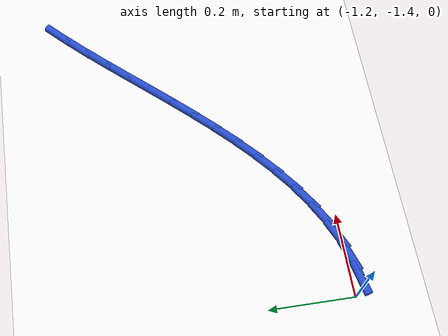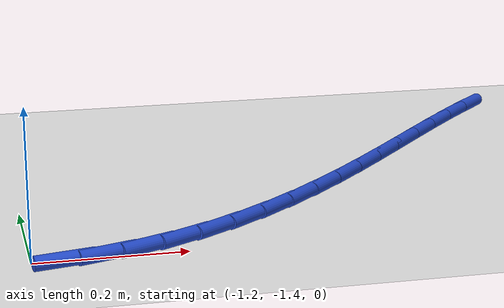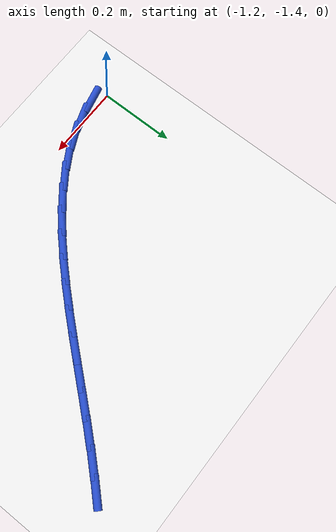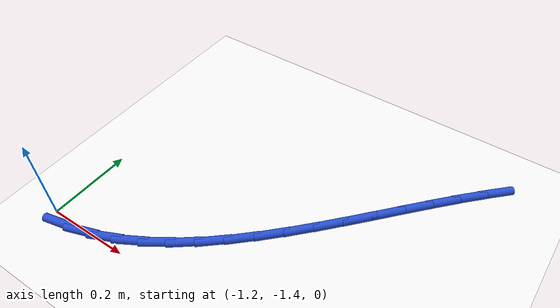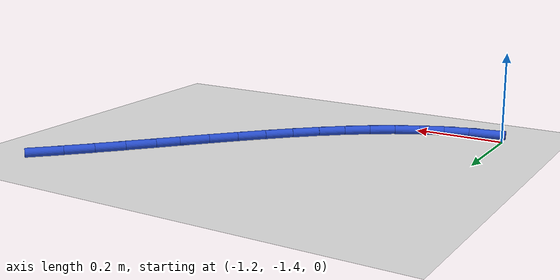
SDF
<sdf version="1.6">
 <world name="default">
  <model name="ground_plane">
   <static>1</static>
   <link name="link">
    <collision name="collision">
     <geometry><plane><normal>0 0 1</normal><size>100 100</size></plane></geometry>
     <surface><friction><ode><mu>100</mu><mu2>50</mu2></ode></friction></surface>
    </collision>
    <visual name="visual">
     <cast_shadows>0</cast_shadows>
     <geometry><plane><normal>0 0 1</normal><size>100 100</size></plane></geometry>
     <material>
      <script><uri>file://media/materials/scripts/gazebo.material</uri><name>Gazebo/WhiteGlow</name></script>
     </material>
    </visual>
   </link>
  </model>
  <model name="line">
   <link name="link_99">
    <pose>-1.1600280065689692 -1.4197722489236113 0.01 0 1.57 0.21276835434842656</pose>
    <collision name="collision">
     <geometry><cylinder><radius>0.01</radius><length>0.08</length></cylinder></geometry>
    </collision>
    <visual name="visual">
     <material>
      <script><name>Gazebo/Blue</name><uri>file://media/materials/scripts/gazebo.material</uri></script>
     </material>
     <geometry><cylinder><radius>0.01</radius><length>0.08</length></cylinder></geometry>
    </visual>
   </link>
   <link name="link_100">
    <pose>-1.1050600243449615 -1.4078970605701893 0.01 0 1.57 0.32487561543664883</pose>
    <collision name="collision">
     <geometry><cylinder><radius>0.01</radius><length>0.08</length></cylinder></geometry>
    </collision>
    <visual name="visual">
     <material>
      <script><name>Gazebo/Blue</name><uri>file://media/materials/scripts/gazebo.material</uri></script>
     </material>
     <geometry><cylinder><radius>0.01</radius><length>0.08</length></cylinder></geometry>
    </visual>
   </link>
   <link name="link_101">
    <pose>-1.0518881598986847 -1.3899882844916367 0.01 0 1.57 0.4291946029937078</pose>
    <collision name="collision">
     <geometry><cylinder><radius>0.01</radius><length>0.08</length></cylinder></geometry>
    </collision>
    <visual name="visual">
     <material>
      <script><name>Gazebo/Blue</name><uri>file://media/materials/scripts/gazebo.material</uri></script>
     </material>
     <geometry><cylinder><radius>0.01</radius><length>0.08</length></cylinder></geometry>
    </visual>
   </link>
   <link name="link_102">
    <pose>-1.0004007100817627 -1.36642522894167 0.01 0 1.57 0.5207507013752534</pose>
    <collision name="collision">
     <geometry><cylinder><radius>0.01</radius><length>0.08</length></cylinder></geometry>
    </collision>
    <visual name="visual">
     <material>
      <script><name>Gazebo/Blue</name><uri>file://media/materials/scripts/gazebo.material</uri></script>
     </material>
     <geometry><cylinder><radius>0.01</radius><length>0.08</length></cylinder></geometry>
    </visual>
   </link>
   <link name="link_103">
    <pose>-0.95043045822631 -1.3377643382263307 0.01 0 1.57 0.5991496635756609</pose>
    <collision name="collision">
     <geometry><cylinder><radius>0.01</radius><length>0.08</length></cylinder></geometry>
    </collision>
    <visual name="visual">
     <material>
      <script><name>Gazebo/Blue</name><uri>file://media/materials/scripts/gazebo.material</uri></script>
     </material>
     <geometry><cylinder><radius>0.01</radius><length>0.08</length></cylinder></geometry>
    </visual>
   </link>
   <link name="link_104">
    <pose>-0.9018101815337081 -1.3045620762139876 0.01 0 1.57 0.6648581560356254</pose>
    <collision name="collision">
     <geometry><cylinder><radius>0.01</radius><length>0.08</length></cylinder></geometry>
    </collision>
    <visual name="visual">
     <material>
      <script><name>Gazebo/Blue</name><uri>file://media/materials/scripts/gazebo.material</uri></script>
     </material>
     <geometry><cylinder><radius>0.01</radius><length>0.08</length></cylinder></geometry>
    </visual>
   </link>
   <link name="link_105">
    <pose>-0.8543726572053384 -1.2673749067730082 0.01 0 1.57 0.7187856805991432</pose>
    <collision name="collision">
     <geometry><cylinder><radius>0.01</radius><length>0.08</length></cylinder></geometry>
    </collision>
    <visual name="visual">
     <material>
      <script><name>Gazebo/Blue</name><uri>file://media/materials/scripts/gazebo.material</uri></script>
     </material>
     <geometry><cylinder><radius>0.01</radius><length>0.08</length></cylinder></geometry>
    </visual>
   </link>
   <link name="link_106">
    <pose>-0.8079506624425828 -1.2267592937717615 0.01 0 1.57 0.7619793005165518</pose>
    <collision name="collision">
     <geometry><cylinder><radius>0.01</radius><length>0.08</length></cylinder></geometry>
    </collision>
    <visual name="visual">
     <material>
      <script><name>Gazebo/Blue</name><uri>file://media/materials/scripts/gazebo.material</uri></script>
     </material>
     <geometry><cylinder><radius>0.01</radius><length>0.08</length></cylinder></geometry>
    </visual>
   </link>
   <link name="link_107">
    <pose>-0.7623769744468226 -1.183271701078615 0.01 0 1.57 0.795436938964407</pose>
    <collision name="collision">
     <geometry><cylinder><radius>0.01</radius><length>0.08</length></cylinder></geometry>
    </collision>
    <visual name="visual">
     <material>
      <script><name>Gazebo/Blue</name><uri>file://media/materials/scripts/gazebo.material</uri></script>
     </material>
     <geometry><cylinder><radius>0.01</radius><length>0.08</length></cylinder></geometry>
    </visual>
   </link>
   <link name="link_108">
    <pose>-0.7174843704194409 -1.1374685925619377 0.01 0 1.57 0.8200089432826435</pose>
    <collision name="collision">
     <geometry><cylinder><radius>0.01</radius><length>0.08</length></cylinder></geometry>
    </collision>
    <visual name="visual">
     <material>
      <script><name>Gazebo/Blue</name><uri>file://media/materials/scripts/gazebo.material</uri></script>
     </material>
     <geometry><cylinder><radius>0.01</radius><length>0.08</length></cylinder></geometry>
    </visual>
   </link>
   <link name="link_109">
    <pose>-0.6731056275618188 -1.0899064320900982 0.01 0 1.57 0.8363540643603233</pose>
    <collision name="collision">
     <geometry><cylinder><radius>0.01</radius><length>0.08</length></cylinder></geometry>
    </collision>
    <visual name="visual">
     <material>
      <script><name>Gazebo/Blue</name><uri>file://media/materials/scripts/gazebo.material</uri></script>
     </material>
     <geometry><cylinder><radius>0.01</radius><length>0.08</length></cylinder></geometry>
    </visual>
   </link>
   <link name="link_110">
    <pose>-0.6290735230753376 -1.0411416835314637 0.01 0 1.57 0.8449242776932623</pose>
    <collision name="collision">
     <geometry><cylinder><radius>0.01</radius><length>0.08</length></cylinder></geometry>
    </collision>
    <visual name="visual">
     <material>
      <script><name>Gazebo/Blue</name><uri>file://media/materials/scripts/gazebo.material</uri></script>
     </material>
     <geometry><cylinder><radius>0.01</radius><length>0.08</length></cylinder></geometry>
    </visual>
   </link>
   <link name="link_111">
    <pose>-0.5852208341613802 -0.9917308107544038 0.01 0 1.57 0.845962258115334</pose>
    <collision name="collision">
     <geometry><cylinder><radius>0.01</radius><length>0.08</length></cylinder></geometry>
    </collision>
    <visual name="visual">
     <material>
      <script><name>Gazebo/Blue</name><uri>file://media/materials/scripts/gazebo.material</uri></script>
     </material>
     <geometry><cylinder><radius>0.01</radius><length>0.08</length></cylinder></geometry>
    </visual>
   </link>
   <link name="link_112">
    <pose>-0.5413803380213278 -0.9422302776272862 0.01 0 1.57 0.8395025025750055</pose>
    <collision name="collision">
     <geometry><cylinder><radius>0.01</radius><length>0.08</length></cylinder></geometry>
    </collision>
    <visual name="visual">
     <material>
      <script><name>Gazebo/Blue</name><uri>file://media/materials/scripts/gazebo.material</uri></script>
     </material>
     <geometry><cylinder><radius>0.01</radius><length>0.08</length></cylinder></geometry>
    </visual>
   </link>
   <link name="link_113">
    <pose>-0.4973848118565625 -0.8931965480184795 0.01 0 1.57 0.8253720231641682</pose>
    <collision name="collision">
     <geometry><cylinder><radius>0.01</radius><length>0.08</length></cylinder></geometry>
    </collision>
    <visual name="visual">
     <material>
      <script><name>Gazebo/Blue</name><uri>file://media/materials/scripts/gazebo.material</uri></script>
     </material>
     <geometry><cylinder><radius>0.01</radius><length>0.08</length></cylinder></geometry>
    </visual>
   </link>
   <link name="link_114">
    <pose>-0.45306703286846584 -0.8451860857963516 0.01 0 1.57 0.8037241426233908</pose>
    <collision name="collision">
     <geometry><cylinder><radius>0.01</radius><length>0.08</length></cylinder></geometry>
    </collision>
    <visual name="visual">
     <material>
      <script><name>Gazebo/Blue</name><uri>file://media/materials/scripts/gazebo.material</uri></script>
     </material>
     <geometry><cylinder><radius>0.01</radius><length>0.08</length></cylinder></geometry>
    </visual>
   </link>
   <link name="link_115">
    <pose>-0.40827867102505905 -0.7987253068682264 0.01 0 1.57 0.7850996180412941</pose>
    <collision name="collision">
     <geometry><cylinder><radius>0.01</radius><length>0.08</length></cylinder></geometry>
    </collision>
    <visual name="visual">
     <material>
      <script><name>Gazebo/Blue</name><uri>file://media/materials/scripts/gazebo.material</uri></script>
     </material>
     <geometry><cylinder><radius>0.01</radius><length>0.08</length></cylinder></geometry>
    </visual>
   </link>
  </model>
 </world>
</sdf>
